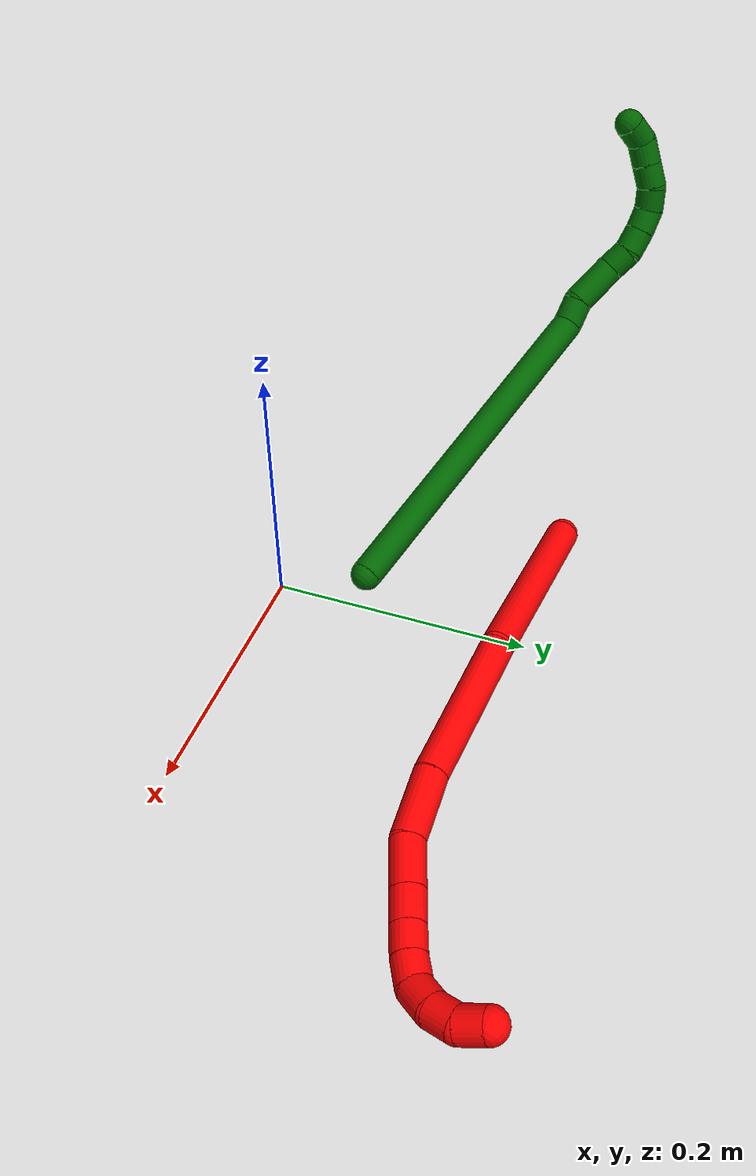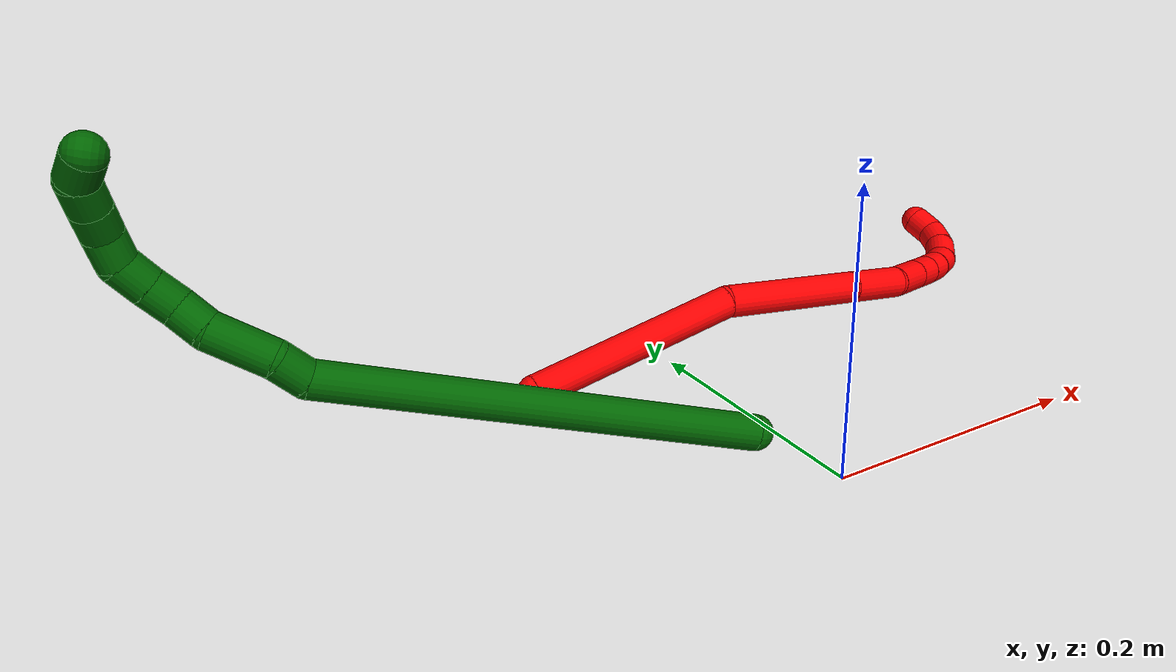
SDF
<sdf version="1.7">
 <world name="default">
  <model name="2">
   <static>0</static>
   <link name="2">
    <collision name="collision-cylinder-e_1_1_4">
     <pose>0.023934 0.019014 0.078383 -0.237981 0.288469 -0.034726</pose>
     <geometry><cylinder><radius>0.0125</radius><length>0.168264</length></cylinder></geometry>
     <surface>
      <friction><ode><mu>1.16</mu><mu2>1.16</mu2><slip1>0</slip1><slip2>0</slip2></ode></friction>
      <contact><ode><kp>1e+06</kp><kd>1</kd><max_vel>0</max_vel><min_depth>0.001</min_depth></ode></contact>
     </surface>
    </collision>
    <visual name="visual-cylinder-e_1_1_4">
     <pose>0.023934 0.019014 0.078383 -0.237981 0.288469 -0.034726</pose>
     <geometry><cylinder><radius>0.0125</radius><length>0.168264</length></cylinder></geometry>
     <material><ambient>1 0 0 1</ambient></material>
    </visual>
    <collision name="collision-cylinder-e_2_4_5">
     <pose>0.052399 0.039724 0.215558 -0.028844 0.076878 -0.001109</pose>
     <geometry><cylinder><radius>0.0125</radius><length>0.117983</length></cylinder></geometry>
     <surface>
      <friction><ode><mu>1.16</mu><mu2>1.16</mu2><slip1>0</slip1><slip2>0</slip2></ode></friction>
      <contact><ode><kp>1e+06</kp><kd>1</kd><max_vel>0</max_vel><min_depth>0.001</min_depth></ode></contact>
     </surface>
    </collision>
    <visual name="visual-cylinder-e_2_4_5">
     <pose>0.052399 0.039724 0.215558 -0.028844 0.076878 -0.001109</pose>
     <geometry><cylinder><radius>0.0125</radius><length>0.117983</length></cylinder></geometry>
     <material><ambient>1 0 0 1</ambient></material>
    </visual>
    <collision name="collision-cylinder-e_3_5_6">
     <pose>0.060477 0.039354 0.299524 0.081882 0.139534 0.005725</pose>
     <geometry><cylinder><radius>0.0125</radius><length>0.051012</length></cylinder></geometry>
     <surface>
      <friction><ode><mu>1.16</mu><mu2>1.16</mu2><slip1>0</slip1><slip2>0</slip2></ode></friction>
      <contact><ode><kp>1e+06</kp><kd>1</kd><max_vel>0</max_vel><min_depth>0.001</min_depth></ode></contact>
     </surface>
    </collision>
    <visual name="visual-cylinder-e_3_5_6">
     <pose>0.060477 0.039354 0.299524 0.081882 0.139534 0.005725</pose>
     <geometry><cylinder><radius>0.0125</radius><length>0.051012</length></cylinder></geometry>
     <material><ambient>1 0 0 1</ambient></material>
    </visual>
    <collision name="collision-cylinder-e_4_6_7">
     <pose>0.070673 0.032499 0.340397 0.296138 0.384833 0.058105</pose>
     <geometry><cylinder><radius>0.0125</radius><length>0.035418</length></cylinder></geometry>
     <surface>
      <friction><ode><mu>1.16</mu><mu2>1.16</mu2><slip1>0</slip1><slip2>0</slip2></ode></friction>
      <contact><ode><kp>1e+06</kp><kd>1</kd><max_vel>0</max_vel><min_depth>0.001</min_depth></ode></contact>
     </surface>
    </collision>
    <visual name="visual-cylinder-e_4_6_7">
     <pose>0.070673 0.032499 0.340397 0.296138 0.384833 0.058105</pose>
     <geometry><cylinder><radius>0.0125</radius><length>0.035418</length></cylinder></geometry>
     <material><ambient>1 0 0 1</ambient></material>
    </visual>
    <collision name="collision-cylinder-e_5_7_8">
     <pose>0.081807 0.024534 0.366798 0.288349 0.38212 0.056147</pose>
     <geometry><cylinder><radius>0.0125</radius><length>0.024059</length></cylinder></geometry>
     <surface>
      <friction><ode><mu>1.16</mu><mu2>1.16</mu2><slip1>0</slip1><slip2>0</slip2></ode></friction>
      <contact><ode><kp>1e+06</kp><kd>1</kd><max_vel>0</max_vel><min_depth>0.001</min_depth></ode></contact>
     </surface>
    </collision>
    <visual name="visual-cylinder-e_5_7_8">
     <pose>0.081807 0.024534 0.366798 0.288349 0.38212 0.056147</pose>
     <geometry><cylinder><radius>0.0125</radius><length>0.024059</length></cylinder></geometry>
     <material><ambient>1 0 0 1</ambient></material>
    </visual>
    <collision name="collision-cylinder-e_6_8_9">
     <pose>0.090514 0.018714 0.386509 0.285717 0.422462 0.061667</pose>
     <geometry><cylinder><radius>0.0125</radius><length>0.020591</length></cylinder></geometry>
     <surface>
      <friction><ode><mu>1.16</mu><mu2>1.16</mu2><slip1>0</slip1><slip2>0</slip2></ode></friction>
      <contact><ode><kp>1e+06</kp><kd>1</kd><max_vel>0</max_vel><min_depth>0.001</min_depth></ode></contact>
     </surface>
    </collision>
    <visual name="visual-cylinder-e_6_8_9">
     <pose>0.090514 0.018714 0.386509 0.285717 0.422462 0.061667</pose>
     <geometry><cylinder><radius>0.0125</radius><length>0.020591</length></cylinder></geometry>
     <material><ambient>1 0 0 1</ambient></material>
    </visual>
    <collision name="collision-cylinder-e_7_9_10">
     <pose>0.100094 0.013184 0.403614 0.342136 0.557629 0.09883</pose>
     <geometry><cylinder><radius>0.0125</radius><length>0.020255</length></cylinder></geometry>
     <surface>
      <friction><ode><mu>1.16</mu><mu2>1.16</mu2><slip1>0</slip1><slip2>0</slip2></ode></friction>
      <contact><ode><kp>1e+06</kp><kd>1</kd><max_vel>0</max_vel><min_depth>0.001</min_depth></ode></contact>
     </surface>
    </collision>
    <visual name="visual-cylinder-e_7_9_10">
     <pose>0.100094 0.013184 0.403614 0.342136 0.557629 0.09883</pose>
     <geometry><cylinder><radius>0.0125</radius><length>0.020255</length></cylinder></geometry>
     <material><ambient>1 0 0 1</ambient></material>
    </visual>
    <collision name="collision-cylinder-e_8_10_11">
     <pose>0.114813 0.007989 0.416736 0.431118 1.03688 0.248543</pose>
     <geometry><cylinder><radius>0.0125</radius><length>0.021746</length></cylinder></geometry>
     <surface>
      <friction><ode><mu>1.16</mu><mu2>1.16</mu2><slip1>0</slip1><slip2>0</slip2></ode></friction>
      <contact><ode><kp>1e+06</kp><kd>1</kd><max_vel>0</max_vel><min_depth>0.001</min_depth></ode></contact>
     </surface>
    </collision>
    <visual name="visual-cylinder-e_8_10_11">
     <pose>0.114813 0.007989 0.416736 0.431118 1.03688 0.248543</pose>
     <geometry><cylinder><radius>0.0125</radius><length>0.021746</length></cylinder></geometry>
     <material><ambient>1 0 0 1</ambient></material>
    </visual>
    <collision name="collision-cylinder-e_9_11_12">
     <pose>0.13361 0.002559 0.423691 1.01683 1.20033 0.728723</pose>
     <geometry><cylinder><radius>0.0125</radius><length>0.020249</length></cylinder></geometry>
     <surface>
      <friction><ode><mu>1.16</mu><mu2>1.16</mu2><slip1>0</slip1><slip2>0</slip2></ode></friction>
      <contact><ode><kp>1e+06</kp><kd>1</kd><max_vel>0</max_vel><min_depth>0.001</min_depth></ode></contact>
     </surface>
    </collision>
    <visual name="visual-cylinder-e_9_11_12">
     <pose>0.13361 0.002559 0.423691 1.01683 1.20033 0.728723</pose>
     <geometry><cylinder><radius>0.0125</radius><length>0.020249</length></cylinder></geometry>
     <material><ambient>1 0 0 1</ambient></material>
    </visual>
    <collision name="collision-cylinder-e_10_12_2">
     <pose>0.152458 -0.003361 0.422817 2.35605 1.17222 2.02583</pose>
     <geometry><cylinder><radius>0.0125</radius><length>0.020423</length></cylinder></geometry>
     <surface>
      <friction><ode><mu>1.16</mu><mu2>1.16</mu2><slip1>0</slip1><slip2>0</slip2></ode></friction>
      <contact><ode><kp>1e+06</kp><kd>1</kd><max_vel>0</max_vel><min_depth>0.001</min_depth></ode></contact>
     </surface>
    </collision>
    <visual name="visual-cylinder-e_10_12_2">
     <pose>0.152458 -0.003361 0.422817 2.35605 1.17222 2.02583</pose>
     <geometry><cylinder><radius>0.0125</radius><length>0.020423</length></cylinder></geometry>
     <material><ambient>1 0 0 1</ambient></material>
    </visual>
    <collision name="collision-sphere-2">
     <pose>0.161869 -0.006164 0.420015 0 -0 0</pose>
     <geometry><sphere><radius>0.0125</radius></sphere></geometry>
     <surface>
      <friction><ode><mu>1.16</mu><mu2>1.16</mu2><slip1>0</slip1><slip2>0</slip2></ode></friction>
      <contact><ode><kp>1e+06</kp><kd>1</kd><max_vel>0</max_vel><min_depth>0.001</min_depth></ode></contact>
     </surface>
    </collision>
    <visual name="visual-sphere-2">
     <pose>0.161869 -0.006164 0.420015 0 -0 0</pose>
     <geometry><sphere><radius>0.0125</radius></sphere></geometry>
     <material><ambient>1 0 0 1</ambient></material>
    </visual>
    <collision name="collision-sphere-12">
     <pose>0.143048 -0.000558 0.425619 0 -0 0</pose>
     <geometry><sphere><radius>0.0125</radius></sphere></geometry>
     <surface>
      <friction><ode><mu>1.16</mu><mu2>1.16</mu2><slip1>0</slip1><slip2>0</slip2></ode></friction>
      <contact><ode><kp>1e+06</kp><kd>1</kd><max_vel>0</max_vel><min_depth>0.001</min_depth></ode></contact>
     </surface>
    </collision>
    <visual name="visual-sphere-12">
     <pose>0.143048 -0.000558 0.425619 0 -0 0</pose>
     <geometry><sphere><radius>0.0125</radius></sphere></geometry>
     <material><ambient>1 0 0 1</ambient></material>
    </visual>
    <collision name="collision-sphere-11">
     <pose>0.124172 0.005676 0.421763 0 -0 0</pose>
     <geometry><sphere><radius>0.0125</radius></sphere></geometry>
     <surface>
      <friction><ode><mu>1.16</mu><mu2>1.16</mu2><slip1>0</slip1><slip2>0</slip2></ode></friction>
      <contact><ode><kp>1e+06</kp><kd>1</kd><max_vel>0</max_vel><min_depth>0.001</min_depth></ode></contact>
     </surface>
    </collision>
    <visual name="visual-sphere-11">
     <pose>0.124172 0.005676 0.421763 0 -0 0</pose>
     <geometry><sphere><radius>0.0125</radius></sphere></geometry>
     <material><ambient>1 0 0 1</ambient></material>
    </visual>
    <collision name="collision-sphere-10">
     <pose>0.105453 0.010301 0.411709 0 -0 0</pose>
     <geometry><sphere><radius>0.0125</radius></sphere></geometry>
     <surface>
      <friction><ode><mu>1.16</mu><mu2>1.16</mu2><slip1>0</slip1><slip2>0</slip2></ode></friction>
      <contact><ode><kp>1e+06</kp><kd>1</kd><max_vel>0</max_vel><min_depth>0.001</min_depth></ode></contact>
     </surface>
    </collision>
    <visual name="visual-sphere-10">
     <pose>0.105453 0.010301 0.411709 0 -0 0</pose>
     <geometry><sphere><radius>0.0125</radius></sphere></geometry>
     <material><ambient>1 0 0 1</ambient></material>
    </visual>
    <collision name="collision-sphere-9">
     <pose>0.094735 0.016067 0.395519 0 -0 0</pose>
     <geometry><sphere><radius>0.0125</radius></sphere></geometry>
     <surface>
      <friction><ode><mu>1.16</mu><mu2>1.16</mu2><slip1>0</slip1><slip2>0</slip2></ode></friction>
      <contact><ode><kp>1e+06</kp><kd>1</kd><max_vel>0</max_vel><min_depth>0.001</min_depth></ode></contact>
     </surface>
    </collision>
    <visual name="visual-sphere-9">
     <pose>0.094735 0.016067 0.395519 0 -0 0</pose>
     <geometry><sphere><radius>0.0125</radius></sphere></geometry>
     <material><ambient>1 0 0 1</ambient></material>
    </visual>
    <collision name="collision-sphere-4">
     <pose>0.047869 0.038028 0.156765 0 -0 0</pose>
     <geometry><sphere><radius>0.0125</radius></sphere></geometry>
     <surface>
      <friction><ode><mu>1.16</mu><mu2>1.16</mu2><slip1>0</slip1><slip2>0</slip2></ode></friction>
      <contact><ode><kp>1e+06</kp><kd>1</kd><max_vel>0</max_vel><min_depth>0.001</min_depth></ode></contact>
     </surface>
    </collision>
    <visual name="visual-sphere-4">
     <pose>0.047869 0.038028 0.156765 0 -0 0</pose>
     <geometry><sphere><radius>0.0125</radius></sphere></geometry>
     <material><ambient>1 0 0 1</ambient></material>
    </visual>
    <collision name="collision-sphere-1">
     <geometry><sphere><radius>0.0125</radius></sphere></geometry>
     <surface>
      <friction><ode><mu>1.16</mu><mu2>1.16</mu2><slip1>0</slip1><slip2>0</slip2></ode></friction>
      <contact><ode><kp>1e+06</kp><kd>1</kd><max_vel>0</max_vel><min_depth>0.001</min_depth></ode></contact>
     </surface>
    </collision>
    <visual name="visual-sphere-1">
     <geometry><sphere><radius>0.0125</radius></sphere></geometry>
     <material><ambient>1 0 0 1</ambient></material>
    </visual>
    <collision name="collision-sphere-8">
     <pose>0.086292 0.02136 0.377499 0 -0 0</pose>
     <geometry><sphere><radius>0.0125</radius></sphere></geometry>
     <surface>
      <friction><ode><mu>1.16</mu><mu2>1.16</mu2><slip1>0</slip1><slip2>0</slip2></ode></friction>
      <contact><ode><kp>1e+06</kp><kd>1</kd><max_vel>0</max_vel><min_depth>0.001</min_depth></ode></contact>
     </surface>
    </collision>
    <visual name="visual-sphere-8">
     <pose>0.086292 0.02136 0.377499 0 -0 0</pose>
     <geometry><sphere><radius>0.0125</radius></sphere></geometry>
     <material><ambient>1 0 0 1</ambient></material>
    </visual>
    <collision name="collision-sphere-5">
     <pose>0.05693 0.04142 0.274351 0 -0 0</pose>
     <geometry><sphere><radius>0.0125</radius></sphere></geometry>
     <surface>
      <friction><ode><mu>1.16</mu><mu2>1.16</mu2><slip1>0</slip1><slip2>0</slip2></ode></friction>
      <contact><ode><kp>1e+06</kp><kd>1</kd><max_vel>0</max_vel><min_depth>0.001</min_depth></ode></contact>
     </surface>
    </collision>
    <visual name="visual-sphere-5">
     <pose>0.05693 0.04142 0.274351 0 -0 0</pose>
     <geometry><sphere><radius>0.0125</radius></sphere></geometry>
     <material><ambient>1 0 0 1</ambient></material>
    </visual>
    <collision name="collision-sphere-6">
     <pose>0.064025 0.037289 0.324698 0 -0 0</pose>
     <geometry><sphere><radius>0.0125</radius></sphere></geometry>
     <surface>
      <friction><ode><mu>1.16</mu><mu2>1.16</mu2><slip1>0</slip1><slip2>0</slip2></ode></friction>
      <contact><ode><kp>1e+06</kp><kd>1</kd><max_vel>0</max_vel><min_depth>0.001</min_depth></ode></contact>
     </surface>
    </collision>
    <visual name="visual-sphere-6">
     <pose>0.064025 0.037289 0.324698 0 -0 0</pose>
     <geometry><sphere><radius>0.0125</radius></sphere></geometry>
     <material><ambient>1 0 0 1</ambient></material>
    </visual>
    <collision name="collision-sphere-7">
     <pose>0.077321 0.027708 0.356097 0 -0 0</pose>
     <geometry><sphere><radius>0.0125</radius></sphere></geometry>
     <surface>
      <friction><ode><mu>1.16</mu><mu2>1.16</mu2><slip1>0</slip1><slip2>0</slip2></ode></friction>
      <contact><ode><kp>1e+06</kp><kd>1</kd><max_vel>0</max_vel><min_depth>0.001</min_depth></ode></contact>
     </surface>
    </collision>
    <visual name="visual-sphere-7">
     <pose>0.077321 0.027708 0.356097 0 -0 0</pose>
     <geometry><sphere><radius>0.0125</radius></sphere></geometry>
     <material><ambient>1 0 0 1</ambient></material>
    </visual>
    <inertial>
     <pose>0.059946 0.024888 0.234384 0 -0 0</pose>
     <mass>0.5</mass>
     <inertia>
      <ixx>0.000552</ixx>
      <ixy>0</ixy>
      <ixz>0</ixz>
      <iyy>0.000549</iyy>
      <iyz>0</iyz>
      <izz>-0.000193</izz>
     </inertia>
    </inertial>
   </link>
   <pose>-0.120292 0.195516 0.01141 1.77078 -0.597067 1.32875</pose>
  </model>
  <model name="6">
   <static>0</static>
   <link name="6">
    <collision name="collision-cylinder-e_1_1_4">
     <pose>-0.001893 -0.003461 0.147533 0.023452 -0.012825 -0.00015</pose>
     <geometry><cylinder><radius>0.0125</radius><length>0.295171</length></cylinder></geometry>
     <surface>
      <friction><ode><mu>1.16</mu><mu2>1.16</mu2><slip1>0</slip1><slip2>0</slip2></ode></friction>
      <contact><ode><kp>1e+06</kp><kd>1</kd><max_vel>0</max_vel><min_depth>0.001</min_depth></ode></contact>
     </surface>
    </collision>
    <visual name="visual-cylinder-e_1_1_4">
     <pose>-0.001893 -0.003461 0.147533 0.023452 -0.012825 -0.00015</pose>
     <geometry><cylinder><radius>0.0125</radius><length>0.295171</length></cylinder></geometry>
     <material><ambient>0 0.392157 0.003922 1</ambient></material>
    </visual>
    <collision name="collision-cylinder-e_2_4_5">
     <pose>-0.00857 -0.009477 0.304805 0.256612 -0.443627 -0.058176</pose>
     <geometry><cylinder><radius>0.0125</radius><length>0.022297</length></cylinder></geometry>
     <surface>
      <friction><ode><mu>1.16</mu><mu2>1.16</mu2><slip1>0</slip1><slip2>0</slip2></ode></friction>
      <contact><ode><kp>1e+06</kp><kd>1</kd><max_vel>0</max_vel><min_depth>0.001</min_depth></ode></contact>
     </surface>
    </collision>
    <visual name="visual-cylinder-e_2_4_5">
     <pose>-0.00857 -0.009477 0.304805 0.256612 -0.443627 -0.058176</pose>
     <geometry><cylinder><radius>0.0125</radius><length>0.022297</length></cylinder></geometry>
     <material><ambient>0 0.392157 0.003922 1</ambient></material>
    </visual>
    <collision name="collision-cylinder-e_3_5_6">
     <pose>-0.015104 -0.018617 0.333923 0.327547 -0.085215 -0.01409</pose>
     <geometry><cylinder><radius>0.0125</radius><length>0.041084</length></cylinder></geometry>
     <surface>
      <friction><ode><mu>1.16</mu><mu2>1.16</mu2><slip1>0</slip1><slip2>0</slip2></ode></friction>
      <contact><ode><kp>1e+06</kp><kd>1</kd><max_vel>0</max_vel><min_depth>0.001</min_depth></ode></contact>
     </surface>
    </collision>
    <visual name="visual-cylinder-e_3_5_6">
     <pose>-0.015104 -0.018617 0.333923 0.327547 -0.085215 -0.01409</pose>
     <geometry><cylinder><radius>0.0125</radius><length>0.041084</length></cylinder></geometry>
     <material><ambient>0 0.392157 0.003922 1</ambient></material>
    </visual>
    <collision name="collision-cylinder-e_4_6_7">
     <pose>-0.018442 -0.031093 0.361799 0.606298 -0.152602 -0.047816</pose>
     <geometry><cylinder><radius>0.0125</radius><length>0.020921</length></cylinder></geometry>
     <surface>
      <friction><ode><mu>1.16</mu><mu2>1.16</mu2><slip1>0</slip1><slip2>0</slip2></ode></friction>
      <contact><ode><kp>1e+06</kp><kd>1</kd><max_vel>0</max_vel><min_depth>0.001</min_depth></ode></contact>
     </surface>
    </collision>
    <visual name="visual-cylinder-e_4_6_7">
     <pose>-0.018442 -0.031093 0.361799 0.606298 -0.152602 -0.047816</pose>
     <geometry><cylinder><radius>0.0125</radius><length>0.020921</length></cylinder></geometry>
     <material><ambient>0 0.392157 0.003922 1</ambient></material>
    </visual>
    <collision name="collision-cylinder-e_5_7_8">
     <pose>-0.023984 -0.04024 0.37904 0.356383 -0.400608 -0.073098</pose>
     <geometry><cylinder><radius>0.0125</radius><length>0.020266</length></cylinder></geometry>
     <surface>
      <friction><ode><mu>1.16</mu><mu2>1.16</mu2><slip1>0</slip1><slip2>0</slip2></ode></friction>
      <contact><ode><kp>1e+06</kp><kd>1</kd><max_vel>0</max_vel><min_depth>0.001</min_depth></ode></contact>
     </surface>
    </collision>
    <visual name="visual-cylinder-e_5_7_8">
     <pose>-0.023984 -0.04024 0.37904 0.356383 -0.400608 -0.073098</pose>
     <geometry><cylinder><radius>0.0125</radius><length>0.020266</length></cylinder></geometry>
     <material><ambient>0 0.392157 0.003922 1</ambient></material>
    </visual>
    <collision name="collision-cylinder-e_6_8_9">
     <pose>-0.032919 -0.046374 0.396028 0.335931 -0.518575 -0.089896</pose>
     <geometry><cylinder><radius>0.0125</radius><length>0.020108</length></cylinder></geometry>
     <surface>
      <friction><ode><mu>1.16</mu><mu2>1.16</mu2><slip1>0</slip1><slip2>0</slip2></ode></friction>
      <contact><ode><kp>1e+06</kp><kd>1</kd><max_vel>0</max_vel><min_depth>0.001</min_depth></ode></contact>
     </surface>
    </collision>
    <visual name="visual-cylinder-e_6_8_9">
     <pose>-0.032919 -0.046374 0.396028 0.335931 -0.518575 -0.089896</pose>
     <geometry><cylinder><radius>0.0125</radius><length>0.020108</length></cylinder></geometry>
     <material><ambient>0 0.392157 0.003922 1</ambient></material>
    </visual>
    <collision name="collision-cylinder-e_7_9_10">
     <pose>-0.046033 -0.052785 0.409037 0.637944 -0.940566 -0.332644</pose>
     <geometry><cylinder><radius>0.0125</radius><length>0.020128</length></cylinder></geometry>
     <surface>
      <friction><ode><mu>1.16</mu><mu2>1.16</mu2><slip1>0</slip1><slip2>0</slip2></ode></friction>
      <contact><ode><kp>1e+06</kp><kd>1</kd><max_vel>0</max_vel><min_depth>0.001</min_depth></ode></contact>
     </surface>
    </collision>
    <visual name="visual-cylinder-e_7_9_10">
     <pose>-0.046033 -0.052785 0.409037 0.637944 -0.940566 -0.332644</pose>
     <geometry><cylinder><radius>0.0125</radius><length>0.020128</length></cylinder></geometry>
     <material><ambient>0 0.392157 0.003922 1</ambient></material>
    </visual>
    <collision name="collision-cylinder-e_8_10_11">
     <pose>-0.063516 -0.056903 0.417297 0.165977 -1.20855 -0.114733</pose>
     <geometry><cylinder><radius>0.0125</radius><length>0.020002</length></cylinder></geometry>
     <surface>
      <friction><ode><mu>1.16</mu><mu2>1.16</mu2><slip1>0</slip1><slip2>0</slip2></ode></friction>
      <contact><ode><kp>1e+06</kp><kd>1</kd><max_vel>0</max_vel><min_depth>0.001</min_depth></ode></contact>
     </surface>
    </collision>
    <visual name="visual-cylinder-e_8_10_11">
     <pose>-0.063516 -0.056903 0.417297 0.165977 -1.20855 -0.114733</pose>
     <geometry><cylinder><radius>0.0125</radius><length>0.020002</length></cylinder></geometry>
     <material><ambient>0 0.392157 0.003922 1</ambient></material>
    </visual>
    <collision name="collision-cylinder-e_9_11_12">
     <pose>-0.082218 -0.058096 0.424298 0.17172 -1.20727 -0.118552</pose>
     <geometry><cylinder><radius>0.0125</radius><length>0.020008</length></cylinder></geometry>
     <surface>
      <friction><ode><mu>1.16</mu><mu2>1.16</mu2><slip1>0</slip1><slip2>0</slip2></ode></friction>
      <contact><ode><kp>1e+06</kp><kd>1</kd><max_vel>0</max_vel><min_depth>0.001</min_depth></ode></contact>
     </surface>
    </collision>
    <visual name="visual-cylinder-e_9_11_12">
     <pose>-0.082218 -0.058096 0.424298 0.17172 -1.20727 -0.118552</pose>
     <geometry><cylinder><radius>0.0125</radius><length>0.020008</length></cylinder></geometry>
     <material><ambient>0 0.392157 0.003922 1</ambient></material>
    </visual>
    <collision name="collision-cylinder-e_10_12_2">
     <pose>-0.101435 -0.059071 0.426172 2.92011 -1.40299 -2.87986</pose>
     <geometry><cylinder><radius>0.0125</radius><length>0.020014</length></cylinder></geometry>
     <surface>
      <friction><ode><mu>1.16</mu><mu2>1.16</mu2><slip1>0</slip1><slip2>0</slip2></ode></friction>
      <contact><ode><kp>1e+06</kp><kd>1</kd><max_vel>0</max_vel><min_depth>0.001</min_depth></ode></contact>
     </surface>
    </collision>
    <visual name="visual-cylinder-e_10_12_2">
     <pose>-0.101435 -0.059071 0.426172 2.92011 -1.40299 -2.87986</pose>
     <geometry><cylinder><radius>0.0125</radius><length>0.020014</length></cylinder></geometry>
     <material><ambient>0 0.392157 0.003922 1</ambient></material>
    </visual>
    <collision name="collision-sphere-2">
     <pose>-0.111302 -0.059438 0.424541 0 -0 0</pose>
     <geometry><sphere><radius>0.0125</radius></sphere></geometry>
     <surface>
      <friction><ode><mu>1.16</mu><mu2>1.16</mu2><slip1>0</slip1><slip2>0</slip2></ode></friction>
      <contact><ode><kp>1e+06</kp><kd>1</kd><max_vel>0</max_vel><min_depth>0.001</min_depth></ode></contact>
     </surface>
    </collision>
    <visual name="visual-sphere-2">
     <pose>-0.111302 -0.059438 0.424541 0 -0 0</pose>
     <geometry><sphere><radius>0.0125</radius></sphere></geometry>
     <material><ambient>0 0.392157 0.003922 1</ambient></material>
    </visual>
    <collision name="collision-sphere-12">
     <pose>-0.091569 -0.058704 0.427802 0 -0 0</pose>
     <geometry><sphere><radius>0.0125</radius></sphere></geometry>
     <surface>
      <friction><ode><mu>1.16</mu><mu2>1.16</mu2><slip1>0</slip1><slip2>0</slip2></ode></friction>
      <contact><ode><kp>1e+06</kp><kd>1</kd><max_vel>0</max_vel><min_depth>0.001</min_depth></ode></contact>
     </surface>
    </collision>
    <visual name="visual-sphere-12">
     <pose>-0.091569 -0.058704 0.427802 0 -0 0</pose>
     <geometry><sphere><radius>0.0125</radius></sphere></geometry>
     <material><ambient>0 0.392157 0.003922 1</ambient></material>
    </visual>
    <collision name="collision-sphere-11">
     <pose>-0.072868 -0.057488 0.420793 0 -0 0</pose>
     <geometry><sphere><radius>0.0125</radius></sphere></geometry>
     <surface>
      <friction><ode><mu>1.16</mu><mu2>1.16</mu2><slip1>0</slip1><slip2>0</slip2></ode></friction>
      <contact><ode><kp>1e+06</kp><kd>1</kd><max_vel>0</max_vel><min_depth>0.001</min_depth></ode></contact>
     </surface>
    </collision>
    <visual name="visual-sphere-11">
     <pose>-0.072868 -0.057488 0.420793 0 -0 0</pose>
     <geometry><sphere><radius>0.0125</radius></sphere></geometry>
     <material><ambient>0 0.392157 0.003922 1</ambient></material>
    </visual>
    <collision name="collision-sphere-10">
     <pose>-0.054164 -0.056317 0.413802 0 -0 0</pose>
     <geometry><sphere><radius>0.0125</radius></sphere></geometry>
     <surface>
      <friction><ode><mu>1.16</mu><mu2>1.16</mu2><slip1>0</slip1><slip2>0</slip2></ode></friction>
      <contact><ode><kp>1e+06</kp><kd>1</kd><max_vel>0</max_vel><min_depth>0.001</min_depth></ode></contact>
     </surface>
    </collision>
    <visual name="visual-sphere-10">
     <pose>-0.054164 -0.056317 0.413802 0 -0 0</pose>
     <geometry><sphere><radius>0.0125</radius></sphere></geometry>
     <material><ambient>0 0.392157 0.003922 1</ambient></material>
    </visual>
    <collision name="collision-sphere-9">
     <pose>-0.037902 -0.049253 0.404273 0 -0 0</pose>
     <geometry><sphere><radius>0.0125</radius></sphere></geometry>
     <surface>
      <friction><ode><mu>1.16</mu><mu2>1.16</mu2><slip1>0</slip1><slip2>0</slip2></ode></friction>
      <contact><ode><kp>1e+06</kp><kd>1</kd><max_vel>0</max_vel><min_depth>0.001</min_depth></ode></contact>
     </surface>
    </collision>
    <visual name="visual-sphere-9">
     <pose>-0.037902 -0.049253 0.404273 0 -0 0</pose>
     <geometry><sphere><radius>0.0125</radius></sphere></geometry>
     <material><ambient>0 0.392157 0.003922 1</ambient></material>
    </visual>
    <collision name="collision-sphere-4">
     <pose>-0.003785 -0.006921 0.295065 0 -0 0</pose>
     <geometry><sphere><radius>0.0125</radius></sphere></geometry>
     <surface>
      <friction><ode><mu>1.16</mu><mu2>1.16</mu2><slip1>0</slip1><slip2>0</slip2></ode></friction>
      <contact><ode><kp>1e+06</kp><kd>1</kd><max_vel>0</max_vel><min_depth>0.001</min_depth></ode></contact>
     </surface>
    </collision>
    <visual name="visual-sphere-4">
     <pose>-0.003785 -0.006921 0.295065 0 -0 0</pose>
     <geometry><sphere><radius>0.0125</radius></sphere></geometry>
     <material><ambient>0 0.392157 0.003922 1</ambient></material>
    </visual>
    <collision name="collision-sphere-1">
     <geometry><sphere><radius>0.0125</radius></sphere></geometry>
     <surface>
      <friction><ode><mu>1.16</mu><mu2>1.16</mu2><slip1>0</slip1><slip2>0</slip2></ode></friction>
      <contact><ode><kp>1e+06</kp><kd>1</kd><max_vel>0</max_vel><min_depth>0.001</min_depth></ode></contact>
     </surface>
    </collision>
    <visual name="visual-sphere-1">
     <geometry><sphere><radius>0.0125</radius></sphere></geometry>
     <material><ambient>0 0.392157 0.003922 1</ambient></material>
    </visual>
    <collision name="collision-sphere-8">
     <pose>-0.027936 -0.043496 0.387784 0 -0 0</pose>
     <geometry><sphere><radius>0.0125</radius></sphere></geometry>
     <surface>
      <friction><ode><mu>1.16</mu><mu2>1.16</mu2><slip1>0</slip1><slip2>0</slip2></ode></friction>
      <contact><ode><kp>1e+06</kp><kd>1</kd><max_vel>0</max_vel><min_depth>0.001</min_depth></ode></contact>
     </surface>
    </collision>
    <visual name="visual-sphere-8">
     <pose>-0.027936 -0.043496 0.387784 0 -0 0</pose>
     <geometry><sphere><radius>0.0125</radius></sphere></geometry>
     <material><ambient>0 0.392157 0.003922 1</ambient></material>
    </visual>
    <collision name="collision-sphere-5">
     <pose>-0.013355 -0.012032 0.314544 0 -0 0</pose>
     <geometry><sphere><radius>0.0125</radius></sphere></geometry>
     <surface>
      <friction><ode><mu>1.16</mu><mu2>1.16</mu2><slip1>0</slip1><slip2>0</slip2></ode></friction>
      <contact><ode><kp>1e+06</kp><kd>1</kd><max_vel>0</max_vel><min_depth>0.001</min_depth></ode></contact>
     </surface>
    </collision>
    <visual name="visual-sphere-5">
     <pose>-0.013355 -0.012032 0.314544 0 -0 0</pose>
     <geometry><sphere><radius>0.0125</radius></sphere></geometry>
     <material><ambient>0 0.392157 0.003922 1</ambient></material>
    </visual>
    <collision name="collision-sphere-6">
     <pose>-0.016852 -0.025202 0.353303 0 -0 0</pose>
     <geometry><sphere><radius>0.0125</radius></sphere></geometry>
     <surface>
      <friction><ode><mu>1.16</mu><mu2>1.16</mu2><slip1>0</slip1><slip2>0</slip2></ode></friction>
      <contact><ode><kp>1e+06</kp><kd>1</kd><max_vel>0</max_vel><min_depth>0.001</min_depth></ode></contact>
     </surface>
    </collision>
    <visual name="visual-sphere-6">
     <pose>-0.016852 -0.025202 0.353303 0 -0 0</pose>
     <geometry><sphere><radius>0.0125</radius></sphere></geometry>
     <material><ambient>0 0.392157 0.003922 1</ambient></material>
    </visual>
    <collision name="collision-sphere-7">
     <pose>-0.020032 -0.036985 0.370295 0 -0 0</pose>
     <geometry><sphere><radius>0.0125</radius></sphere></geometry>
     <surface>
      <friction><ode><mu>1.16</mu><mu2>1.16</mu2><slip1>0</slip1><slip2>0</slip2></ode></friction>
      <contact><ode><kp>1e+06</kp><kd>1</kd><max_vel>0</max_vel><min_depth>0.001</min_depth></ode></contact>
     </surface>
    </collision>
    <visual name="visual-sphere-7">
     <pose>-0.020032 -0.036985 0.370295 0 -0 0</pose>
     <geometry><sphere><radius>0.0125</radius></sphere></geometry>
     <material><ambient>0 0.392157 0.003922 1</ambient></material>
    </visual>
    <inertial>
     <pose>-0.017553 -0.017883 0.241752 0 -0 0</pose>
     <mass>0.5</mass>
     <inertia>
      <ixx>0.002159</ixx>
      <ixy>0</ixy>
      <ixz>0</ixz>
      <iyy>0.002167</iyy>
      <iyz>0</iyz>
      <izz>0.000125</izz>
     </inertia>
    </inertial>
   </link>
   <pose>-0.023963 0.06273 0.0115 -1.08532 1.00311 1.70611</pose>
  </model>
 </world>
</sdf>
